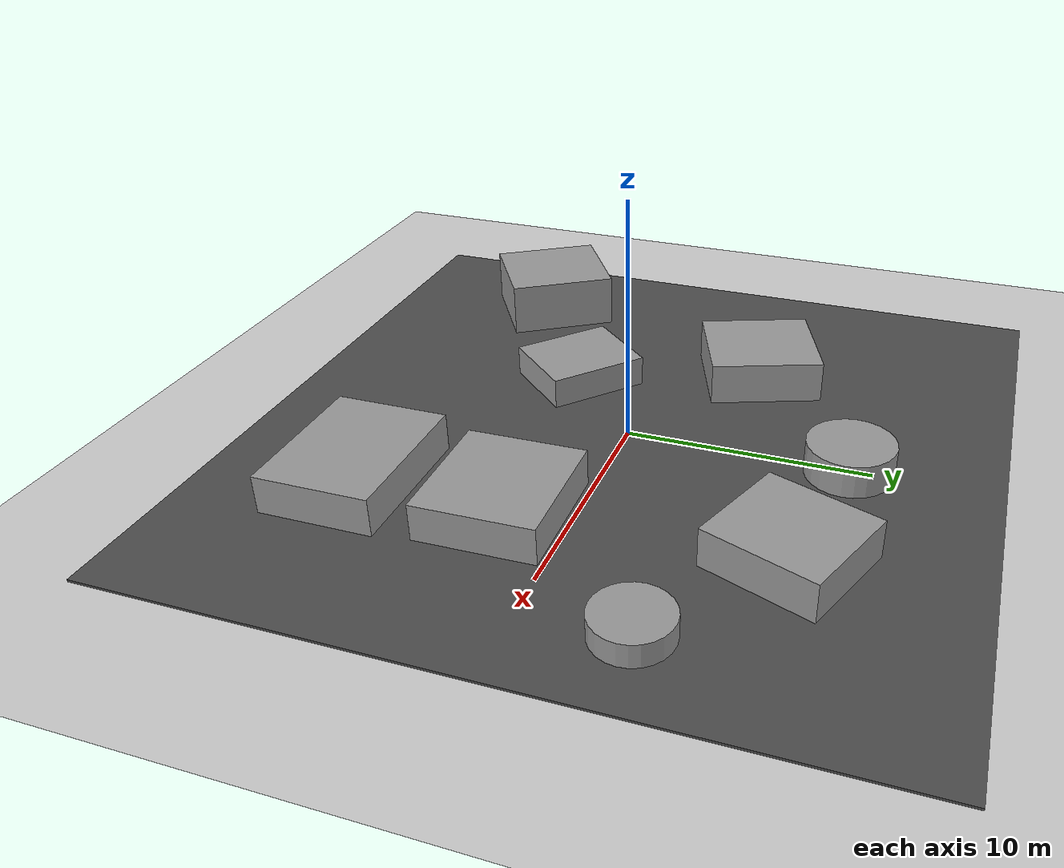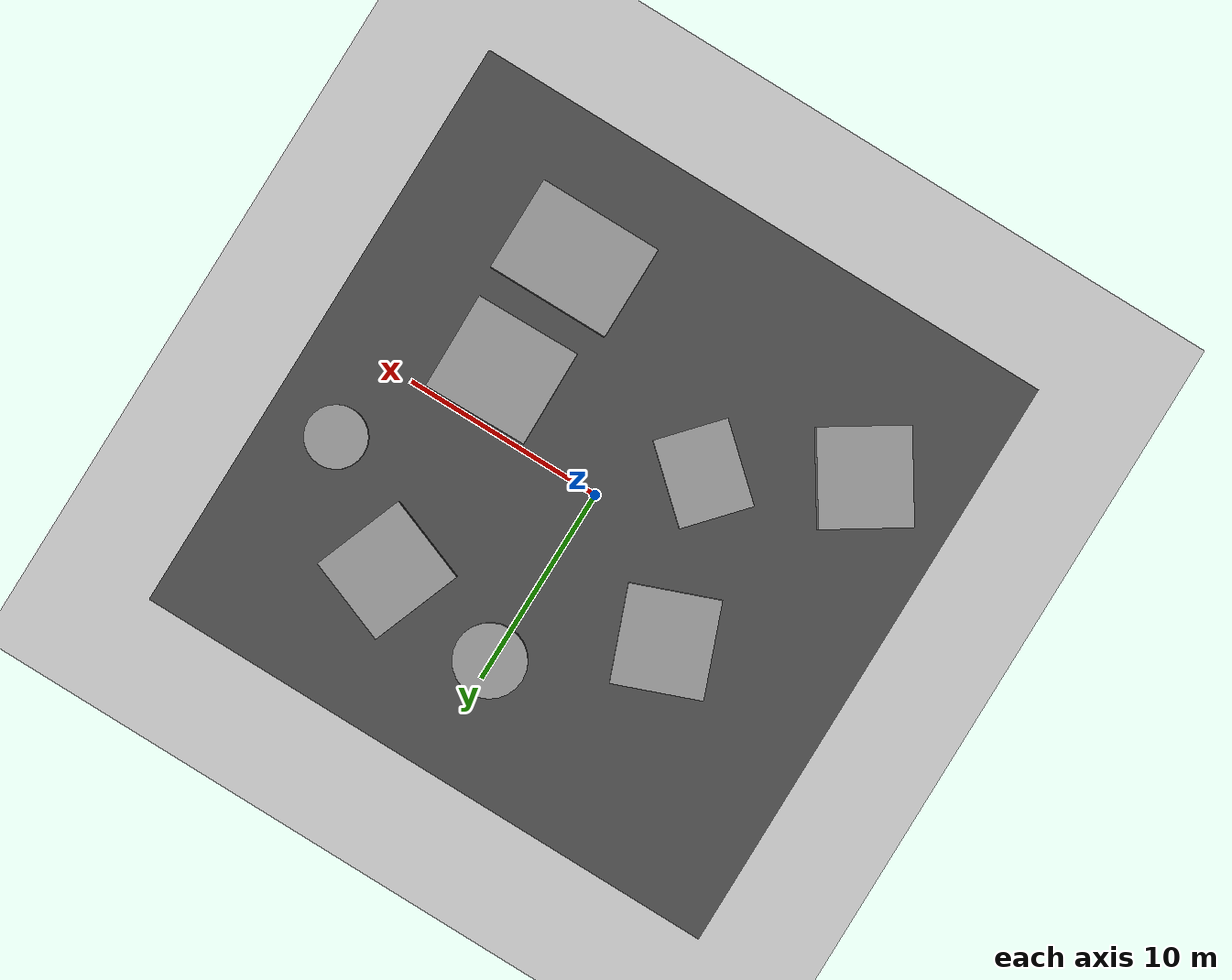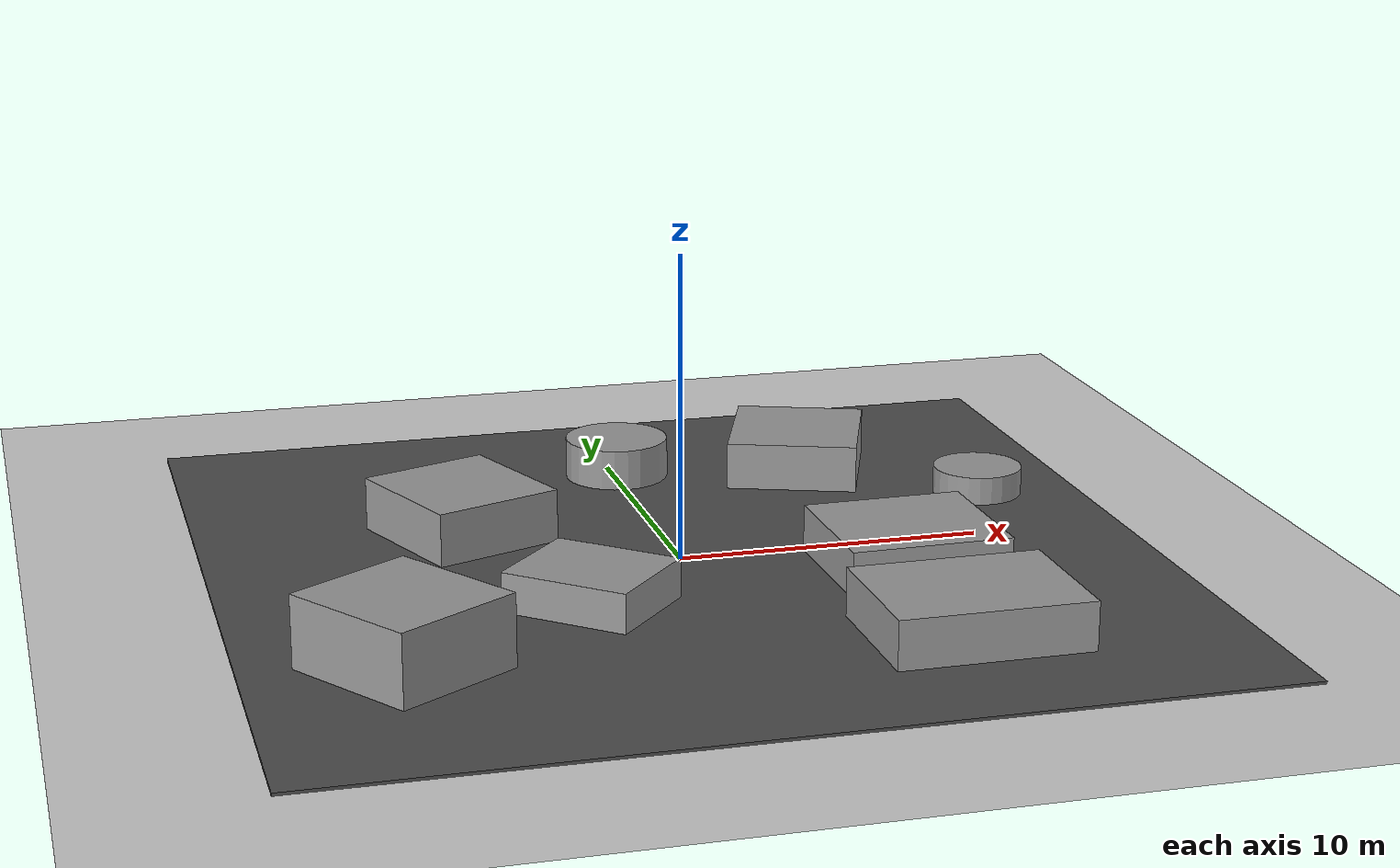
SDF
<sdf version="1.7">
 <world name="default">
  <light name="sun" type="directional">
   <pose>0 0 10 0 -0 0</pose>
   <diffuse>0.8 0.8 0.8 1</diffuse>
   <specular>0.2 0.2 0.2 1</specular>
   <attenuation>
    <range>1000</range>
    <constant>0.9</constant>
    <linear>0.01</linear>
    <quadratic>0.001</quadratic>
   </attenuation>
   <direction>-0.5 0.1 -0.9</direction>
   <spot><inner_angle>0</inner_angle><outer_angle>0</outer_angle><falloff>0</falloff></spot>
  </light>
  <model name="ground_plane">
   <static>1</static>
   <link name="link">
    <collision name="collision">
     <geometry><plane><normal>0 0 1</normal><size>30 30</size></plane></geometry>
     <surface>
      <contact><collide_bitmask>65535</collide_bitmask></contact>
      <friction><ode><mu>100</mu><mu2>50</mu2></ode></friction>
     </surface>
    </collision>
    <visual name="visual">
     <cast_shadows>0</cast_shadows>
     <geometry><plane><normal>0 0 1</normal><size>30 30</size></plane></geometry>
     <material>
      <script><uri>file://media/materials/scripts/gazebo.material</uri><name>Gazebo/Grey</name></script>
     </material>
    </visual>
   </link>
  </model>
  <model name="asphalt_plane">
   <pose>0.060899 0.005935 0 0 -0 0</pose>
   <static>1</static>
   <link name="link">
    <collision name="collision"><geometry><box><size>30 30 0.1</size></box></geometry></collision>
    <visual name="visual">
     <cast_shadows>0</cast_shadows>
     <geometry><box><size>30 30 0.1</size></box></geometry>
     <material>
      <script>
       <uri>model://asphalt_plane/materials/scripts</uri>
       <uri>model://asphalt_plane/materials/textures</uri>
       <name>vrc/asphalt</name>
      </script>
     </material>
    </visual>
   </link>
  </model>
  <physics name="default_physics" default="0" type="ode">
   <ode>
    <solver>
     <friction_model>cone_model</friction_model>
     <island_threads>6</island_threads>
     <type>quick</type>
     <iters>10</iters>
     <sor>1.3</sor>
     <use_dynamic_moi_rescaling>0</use_dynamic_moi_rescaling>
    </solver>
    <constraints>
     <cfm>0</cfm>
     <erp>0.2</erp>
     <contact_max_correcting_vel>100</contact_max_correcting_vel>
     <contact_surface_layer>0.001</contact_surface_layer>
    </constraints>
   </ode>
   <max_step_size>0.001</max_step_size>
   <real_time_factor>1</real_time_factor>
   <real_time_update_rate>1000</real_time_update_rate>
  </physics>
  <gravity>0 0 -9.8066</gravity>
  <magnetic_field>6e-06 2.3e-05 -4.2e-05</magnetic_field>
  <atmosphere type="adiabatic"/>
  <scene>
   <sky><clouds><speed>12</speed></clouds></sky>
   <ambient>0.4 0.4 0.4 1</ambient>
   <background>0.7 0.7 0.7 1</background>
   <shadows>1</shadows>
  </scene>
  <spherical_coordinates>
   <surface_model>EARTH_WGS84</surface_model>
   <latitude_deg>0</latitude_deg>
   <longitude_deg>0</longitude_deg>
   <elevation>0</elevation>
   <heading_deg>0</heading_deg>
  </spherical_coordinates>
  <model name="unit_box">
   <pose>6.72316 -2.64685 0.80576 1e-06 -2e-06 0.015479</pose>
   <link name="link">
    <inertial>
     <mass>1</mass>
     <inertia>
      <ixx>0.166667</ixx>
      <ixy>0</ixy>
      <ixz>0</ixz>
      <iyy>0.166667</iyy>
      <iyz>0</iyz>
      <izz>0.166667</izz>
     </inertia>
    </inertial>
    <collision name="collision"><geometry><box><size>5.26946 4.85005 1.51153</size></box></geometry></collision>
    <visual name="visual">
     <geometry><box><size>5.26946 4.85005 1.51153</size></box></geometry>
     <material>
      <script><name>Gazebo/Grey</name><uri>file://media/materials/scripts/gazebo.material</uri></script>
     </material>
    </visual>
   </link>
  </model>
  <model name="unit_box_clone">
   <pose>6.57152 -8.79969 0.834093 -7e-06 -7e-06 0.002631</pose>
   <link name="link">
    <inertial>
     <mass>1</mass>
     <inertia>
      <ixx>0.166667</ixx>
      <ixy>0</ixy>
      <ixz>0</ixz>
      <iyy>0.166667</iyy>
      <iyz>0</iyz>
      <izz>0.166667</izz>
     </inertia>
    </inertial>
    <collision name="collision"><geometry><box><size>6.19684 4.72999 1.56822</size></box></geometry></collision>
    <visual name="visual">
     <geometry><box><size>6.19684 4.72999 1.56822</size></box></geometry>
     <material>
      <script><name>Gazebo/Grey</name><uri>file://media/materials/scripts/gazebo.material</uri></script>
     </material>
    </visual>
   </link>
  </model>
  <model name="unit_box_clone_clone">
   <pose>-6.34529 4.03299 0.928467 3e-06 -2e-06 0.366039</pose>
   <link name="link">
    <inertial>
     <mass>1</mass>
     <inertia>
      <ixx>0.166667</ixx>
      <ixy>0</ixy>
      <ixz>0</ixz>
      <iyy>0.166667</iyy>
      <iyz>0</iyz>
      <izz>0.166667</izz>
     </inertia>
    </inertial>
    <collision name="collision"><geometry><box><size>4.42254 4.72999 1.75694</size></box></geometry></collision>
    <visual name="visual">
     <geometry><box><size>4.42254 4.72999 1.75694</size></box></geometry>
     <material>
      <script><name>Gazebo/Grey</name><uri>file://media/materials/scripts/gazebo.material</uri></script>
     </material>
    </visual>
   </link>
  </model>
  <model name="unit_box_clone_clone_0">
   <pose>-10.1428 -7.24813 1.20245 -0 -3e-06 0.575857</pose>
   <link name="link">
    <inertial>
     <mass>1</mass>
     <inertia>
      <ixx>0.166667</ixx>
      <ixy>0</ixy>
      <ixz>0</ixz>
      <iyy>0.166667</iyy>
      <iyz>0</iyz>
      <izz>0.166667</izz>
     </inertia>
    </inertial>
    <collision name="collision"><geometry><box><size>4.42254 4.72999 2.3049</size></box></geometry></collision>
    <visual name="visual">
     <geometry><box><size>4.42254 4.72999 2.3049</size></box></geometry>
     <material>
      <script><name>Gazebo/Grey</name><uri>file://media/materials/scripts/gazebo.material</uri></script>
     </material>
    </visual>
   </link>
  </model>
  <model name="unit_box_clone_clone_1">
   <pose>6.33685 8.00641 0.843127 -0 5e-06 -0.361454</pose>
   <link name="link">
    <inertial>
     <mass>1</mass>
     <inertia>
      <ixx>0.166667</ixx>
      <ixy>0</ixy>
      <ixz>0</ixz>
      <iyy>0.166667</iyy>
      <iyz>0</iyz>
      <izz>0.166667</izz>
     </inertia>
    </inertial>
    <collision name="collision"><geometry><box><size>4.42254 4.72999 1.58628</size></box></geometry></collision>
    <visual name="visual">
     <geometry><box><size>4.42254 4.72999 1.58628</size></box></geometry>
     <material>
      <script><name>Gazebo/Grey</name><uri>file://media/materials/scripts/gazebo.material</uri></script>
     </material>
    </visual>
   </link>
  </model>
  <model name="unit_cylinder">
   <pose>11.6143 4.01736 0.52094 -6e-06 -8e-06 -0.014097</pose>
   <link name="link">
    <inertial>
     <mass>1</mass>
     <inertia><ixx>0.145833</ixx><ixy>0</ixy><ixz>0</ixz><iyy>0.145833</iyy><iyz>0</iyz><izz>0.125</izz></inertia>
    </inertial>
    <collision name="collision">
     <geometry><cylinder><radius>1.50596</radius><length>0.941886</length></cylinder></geometry>
    </collision>
    <visual name="visual">
     <geometry><cylinder><radius>1.50596</radius><length>0.941886</length></cylinder></geometry>
     <material>
      <script><name>Gazebo/Grey</name><uri>file://media/materials/scripts/gazebo.material</uri></script>
     </material>
    </visual>
   </link>
  </model>
  <model name="unit_cylinder_0">
   <pose>0.107782 9.06799 0.73684 -4e-06 1.5e-05 -0.004473</pose>
   <link name="link">
    <inertial>
     <mass>1</mass>
     <inertia><ixx>0.145833</ixx><ixy>0</ixy><ixz>0</ixz><iyy>0.145833</iyy><iyz>0</iyz><izz>0.125</izz></inertia>
    </inertial>
    <collision name="collision">
     <geometry><cylinder><radius>1.76366</radius><length>1.37364</length></cylinder></geometry>
    </collision>
    <visual name="visual">
     <geometry><cylinder><radius>1.76366</radius><length>1.37364</length></cylinder></geometry>
     <material>
      <script><name>Gazebo/Grey</name><uri>file://media/materials/scripts/gazebo.material</uri></script>
     </material>
    </visual>
   </link>
  </model>
  <model name="unit_box_0">
   <pose>-3.73663 -3.49419 0.690422 0 2e-06 -0.726227</pose>
   <link name="link">
    <inertial>
     <mass>1</mass>
     <inertia>
      <ixx>0.166667</ixx>
      <ixy>0</ixy>
      <ixz>0</ixz>
      <iyy>0.166667</iyy>
      <iyz>0</iyz>
      <izz>0.166667</izz>
     </inertia>
    </inertial>
    <collision name="collision"><geometry><box><size>4.27539 3.6194 1.28085</size></box></geometry></collision>
    <visual name="visual">
     <geometry><box><size>4.27539 3.6194 1.28085</size></box></geometry>
     <material>
      <script><name>Gazebo/Grey</name><uri>file://media/materials/scripts/gazebo.material</uri></script>
     </material>
    </visual>
   </link>
  </model>
 </world>
</sdf>
